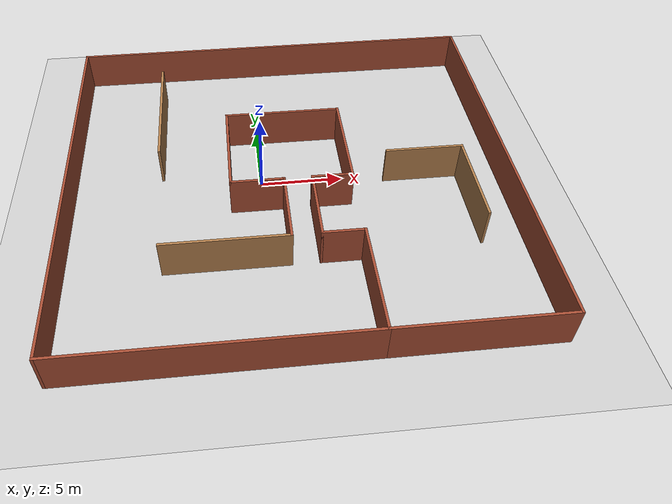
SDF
<sdf version="1.6">
 <world name="default">
  <light name="sun" type="directional">
   <pose>0 0 10 0 -0 0</pose>
   <diffuse>0.8 0.8 0.8 1</diffuse>
   <specular>0.2 0.2 0.2 1</specular>
   <attenuation>
    <range>1000</range>
    <constant>0.9</constant>
    <linear>0.01</linear>
    <quadratic>0.001</quadratic>
   </attenuation>
   <direction>-0.5 0.1 -0.9</direction>
  </light>
  <model name="ground_plane">
   <static>1</static>
   <link name="link">
    <collision name="collision">
     <geometry><plane><normal>0 0 1</normal><size>100 100</size></plane></geometry>
     <surface><friction><ode><mu>100</mu><mu2>50</mu2></ode></friction></surface>
    </collision>
    <visual name="visual">
     <cast_shadows>0</cast_shadows>
     <geometry><plane><normal>0 0 1</normal><size>100 100</size></plane></geometry>
     <material>
      <script><uri>file://media/materials/scripts/gazebo.material</uri><name>Gazebo/Grey</name></script>
     </material>
    </visual>
   </link>
  </model>
  <gravity>0 0 -9.8</gravity>
  <magnetic_field>6e-06 2.3e-05 -4.2e-05</magnetic_field>
  <atmosphere type="adiabatic"/>
  <physics name="default_physics" default="0" type="ode">
   <max_step_size>0.001</max_step_size>
   <real_time_factor>1</real_time_factor>
   <real_time_update_rate>1000</real_time_update_rate>
  </physics>
  <scene><ambient>0.4 0.4 0.4 1</ambient><background>0.7 0.7 0.7 1</background><shadows>1</shadows></scene>
  <audio><device>default</device></audio>
  <spherical_coordinates>
   <surface_model>EARTH_WGS84</surface_model>
   <latitude_deg>0</latitude_deg>
   <longitude_deg>0</longitude_deg>
   <elevation>0</elevation>
   <heading_deg>0</heading_deg>
  </spherical_coordinates>
  <plugin name="world_plugin" filename="libworld_plugin.so"/>
  <model name="swarm_building">
   <pose>1.64 -0.715 0 0 -0 0</pose>
   <link name="Wall_11">
    <collision name="Wall_11_Collision">
     <geometry><box><size>3.25 0.15 2.5</size></box></geometry>
     <pose>0 0 1.25 0 -0 0</pose>
    </collision>
    <visual name="Wall_11_Visual">
     <pose>0 0 1.25 0 -0 0</pose>
     <geometry><box><size>3.25 0.15 2.5</size></box></geometry>
     <material>
      <script><uri>file://media/materials/scripts/gazebo.material</uri><name>Gazebo/Bricks</name></script>
      <ambient>1 1 1 1</ambient>
     </material>
     <meta><layer>0</layer></meta>
    </visual>
    <pose>-2 -1.475 0 0 -0 0</pose>
   </link>
   <link name="Wall_13">
    <collision name="Wall_13_Collision">
     <geometry><box><size>4.5 0.15 2.5</size></box></geometry>
     <pose>0 0 1.25 0 -0 0</pose>
    </collision>
    <visual name="Wall_13_Visual">
     <pose>0 0 1.25 0 -0 0</pose>
     <geometry><box><size>4.5 0.15 2.5</size></box></geometry>
     <material>
      <script><uri>file://media/materials/scripts/gazebo.material</uri><name>Gazebo/Bricks</name></script>
      <ambient>1 1 1 1</ambient>
     </material>
     <meta><layer>0</layer></meta>
    </visual>
    <pose>-0.45 -3.65 0 0 -0 -1.5708</pose>
   </link>
   <link name="Wall_14">
    <collision name="Wall_14_Collision">
     <geometry><box><size>7.25 0.15 2.5</size></box></geometry>
     <pose>0 0 1.25 0 -0 0</pose>
    </collision>
    <visual name="Wall_14_Visual">
     <pose>0 0 1.25 0 -0 0</pose>
     <geometry><box><size>7.25 0.15 2.5</size></box></geometry>
     <material>
      <script><uri>file://media/materials/scripts/gazebo.material</uri><name>Gazebo/Wood</name></script>
      <ambient>1 1 1 1</ambient>
     </material>
     <meta><layer>0</layer></meta>
    </visual>
    <pose>-4 -5.825 0 0 -0 3.14159</pose>
   </link>
   <link name="Wall_16">
    <collision name="Wall_16_Collision">
     <geometry><box><size>4.5 0.15 2.5</size></box></geometry>
     <pose>0 0 1.25 0 -0 0</pose>
    </collision>
    <visual name="Wall_16_Visual">
     <pose>0 0 1.25 0 -0 0</pose>
     <geometry><box><size>4.5 0.15 2.5</size></box></geometry>
     <material>
      <script><uri>file://media/materials/scripts/gazebo.material</uri><name>Gazebo/Bricks</name></script>
      <ambient>1 1 1 1</ambient>
     </material>
     <meta><layer>0</layer></meta>
    </visual>
    <pose>1.2 -3.65 0 0 -0 -1.5708</pose>
   </link>
   <link name="Wall_17">
    <collision name="Wall_17_Collision">
     <geometry><box><size>2.5 0.15 2.5</size></box></geometry>
     <pose>0 0 1.25 0 -0 0</pose>
    </collision>
    <visual name="Wall_17_Visual">
     <pose>0 0 1.25 0 -0 0</pose>
     <geometry><box><size>2.5 0.15 2.5</size></box></geometry>
     <material>
      <script><uri>file://media/materials/scripts/gazebo.material</uri><name>Gazebo/Bricks</name></script>
      <ambient>1 1 1 1</ambient>
     </material>
     <meta><layer>0</layer></meta>
    </visual>
    <pose>2.375 -5.825 0 0 -0 0</pose>
   </link>
   <link name="Wall_22">
    <collision name="Wall_22_Collision">
     <geometry><box><size>6.5 0.15 2.5</size></box></geometry>
     <pose>0 0 1.25 0 -0 0</pose>
    </collision>
    <visual name="Wall_22_Visual">
     <pose>0 0 1.25 0 -0 0</pose>
     <geometry><box><size>6.5 0.15 2.5</size></box></geometry>
     <material>
      <script><uri>file://media/materials/scripts/gazebo.material</uri><name>Gazebo/Bricks</name></script>
      <ambient>1 1 1 1</ambient>
     </material>
     <meta><layer>0</layer></meta>
    </visual>
    <pose>3.55 -9 0 0 -0 -1.5708</pose>
   </link>
   <link name="Wall_23">
    <collision name="Wall_23_Collision">
     <geometry><box><size>16.75 0.15 2.5</size></box></geometry>
     <pose>0 0 1.25 0 -0 0</pose>
    </collision>
    <visual name="Wall_23_Visual">
     <pose>0 0 1.25 0 -0 0</pose>
     <geometry><box><size>16.75 0.15 2.5</size></box></geometry>
     <material>
      <script><uri>file://media/materials/scripts/gazebo.material</uri><name>Gazebo/Bricks</name></script>
      <ambient>1 1 1 1</ambient>
     </material>
     <meta><layer>0</layer></meta>
    </visual>
    <pose>-4.75 -12.175 0 0 -0 3.14159</pose>
   </link>
   <link name="Wall_24">
    <collision name="Wall_24_Collision">
     <geometry><box><size>24.5 0.15 2.5</size></box></geometry>
     <pose>0 0 1.25 0 -0 0</pose>
    </collision>
    <visual name="Wall_24_Visual">
     <pose>0 0 1.25 0 -0 0</pose>
     <geometry><box><size>24.5 0.15 2.5</size></box></geometry>
     <material>
      <script><uri>file://media/materials/scripts/gazebo.material</uri><name>Gazebo/Bricks</name></script>
      <ambient>1 1 1 1</ambient>
     </material>
     <meta><layer>0</layer></meta>
    </visual>
    <pose>-13.05 0 0 0 -0 1.5708</pose>
   </link>
   <link name="Wall_25">
    <collision name="Wall_25_Collision">
     <geometry><box><size>26.25 0.15 2.5</size></box></geometry>
     <pose>0 0 1.25 0 -0 0</pose>
    </collision>
    <visual name="Wall_25_Visual">
     <pose>0 0 1.25 0 -0 0</pose>
     <geometry><box><size>26.25 0.15 2.5</size></box></geometry>
     <material>
      <script><uri>file://media/materials/scripts/gazebo.material</uri><name>Gazebo/Bricks</name></script>
      <ambient>1 1 1 1</ambient>
     </material>
     <meta><layer>0</layer></meta>
    </visual>
    <pose>0 12.175 0 0 -0 0</pose>
   </link>
   <link name="Wall_26">
    <collision name="Wall_26_Collision">
     <geometry><box><size>24.5 0.15 2.5</size></box></geometry>
     <pose>0 0 1.25 0 -0 0</pose>
    </collision>
    <visual name="Wall_26_Visual">
     <pose>0 0 1.25 0 -0 0</pose>
     <geometry><box><size>24.5 0.15 2.5</size></box></geometry>
     <material>
      <script><uri>file://media/materials/scripts/gazebo.material</uri><name>Gazebo/Bricks</name></script>
      <ambient>1 1 1 1</ambient>
     </material>
     <meta><layer>0</layer></meta>
    </visual>
    <pose>13.05 0 0 0 -0 -1.5708</pose>
   </link>
   <link name="Wall_27">
    <collision name="Wall_27_Collision">
     <geometry><box><size>9.65 0.15 2.5</size></box></geometry>
     <pose>0 0 1.25 0 -0 0</pose>
    </collision>
    <visual name="Wall_27_Visual">
     <pose>0 0 1.25 0 -0 0</pose>
     <geometry><box><size>9.65 0.15 2.5</size></box></geometry>
     <material>
      <script><uri>file://media/materials/scripts/gazebo.material</uri><name>Gazebo/Bricks</name></script>
      <ambient>1 1 1 1</ambient>
     </material>
     <meta><layer>0</layer></meta>
    </visual>
    <pose>8.3 -12.175 0 0 -0 3.14159</pose>
   </link>
   <link name="Wall_29">
    <collision name="Wall_29_Collision">
     <geometry><box><size>8.25 0.15 2.5</size></box></geometry>
     <pose>0 0 1.25 0 -0 0</pose>
    </collision>
    <visual name="Wall_29_Visual">
     <pose>0 0 1.25 0 -0 0</pose>
     <geometry><box><size>8.25 0.15 2.5</size></box></geometry>
     <material>
      <script><uri>file://media/materials/scripts/gazebo.material</uri><name>Gazebo/Wood</name></script>
      <ambient>1 1 1 1</ambient>
     </material>
     <meta><layer>0</layer></meta>
    </visual>
    <pose>-7.72346 5.71221 0 0 -0 -1.5708</pose>
   </link>
   <link name="Wall_31">
    <collision name="Wall_31_Collision">
     <geometry><box><size>4.75 0.15 2.5</size></box></geometry>
     <pose>0 0 1.25 0 -0 0</pose>
    </collision>
    <visual name="Wall_31_Visual">
     <pose>0 0 1.25 0 -0 0</pose>
     <geometry><box><size>4.75 0.15 2.5</size></box></geometry>
     <material>
      <script><uri>file://media/materials/scripts/gazebo.material</uri><name>Gazebo/Wood</name></script>
      <ambient>1 1 1 1</ambient>
     </material>
     <meta><layer>0</layer></meta>
    </visual>
    <pose>8.2468 0.323217 0 0 -0 0</pose>
   </link>
   <link name="Wall_32">
    <collision name="Wall_32_Collision">
     <geometry><box><size>5.75 0.15 2.5</size></box></geometry>
     <pose>0 0 1.25 0 -0 0</pose>
    </collision>
    <visual name="Wall_32_Visual">
     <pose>0 0 1.25 0 -0 0</pose>
     <geometry><box><size>5.75 0.15 2.5</size></box></geometry>
     <material>
      <script><uri>file://media/materials/scripts/gazebo.material</uri><name>Gazebo/Wood</name></script>
      <ambient>1 1 1 1</ambient>
     </material>
     <meta><layer>0</layer></meta>
    </visual>
    <pose>10.5468 -2.47678 0 0 -0 -1.5708</pose>
   </link>
   <link name="Wall_4">
    <collision name="Wall_4_Collision">
     <geometry><box><size>6.25 0.15 2.5</size></box></geometry>
     <pose>0 0 1.25 0 -0 0</pose>
    </collision>
    <visual name="Wall_4_Visual">
     <pose>0 0 1.25 0 -0 0</pose>
     <geometry><box><size>6.25 0.15 2.5</size></box></geometry>
     <material>
      <script><uri>file://media/materials/scripts/gazebo.material</uri><name>Gazebo/Bricks</name></script>
      <ambient>1 1 1 1</ambient>
     </material>
     <meta><layer>0</layer></meta>
    </visual>
    <pose>-3.55 1.575 0 0 -0 1.5708</pose>
   </link>
   <link name="Wall_5">
    <collision name="Wall_5_Collision">
     <geometry><box><size>7.25 0.15 2.5</size></box></geometry>
     <pose>0 0 1.25 0 -0 0</pose>
    </collision>
    <visual name="Wall_5_Visual">
     <pose>0 0 1.25 0 -0 0</pose>
     <geometry><box><size>7.25 0.15 2.5</size></box></geometry>
     <material>
      <script><uri>file://media/materials/scripts/gazebo.material</uri><name>Gazebo/Bricks</name></script>
      <ambient>1 1 1 1</ambient>
     </material>
     <meta><layer>0</layer></meta>
    </visual>
    <pose>0 4.625 0 0 -0 0</pose>
   </link>
   <link name="Wall_8">
    <collision name="Wall_8_Collision">
     <geometry><box><size>6.25 0.15 2.5</size></box></geometry>
     <pose>0 0 1.25 0 -0 0</pose>
    </collision>
    <visual name="Wall_8_Visual">
     <pose>0 0 1.25 0 -0 0</pose>
     <geometry><box><size>6.25 0.15 2.5</size></box></geometry>
     <material>
      <script><uri>file://media/materials/scripts/gazebo.material</uri><name>Gazebo/Bricks</name></script>
      <ambient>1 1 1 1</ambient>
     </material>
     <meta><layer>0</layer></meta>
    </visual>
    <pose>3.55 1.575 0 0 -0 -1.5708</pose>
   </link>
   <link name="Wall_9">
    <collision name="Wall_9_Collision">
     <geometry><box><size>2.5 0.15 2.5</size></box></geometry>
     <pose>0 0 1.25 0 -0 0</pose>
    </collision>
    <visual name="Wall_9_Visual">
     <pose>0 0 1.25 0 -0 0</pose>
     <geometry><box><size>2.5 0.15 2.5</size></box></geometry>
     <material>
      <script><uri>file://media/materials/scripts/gazebo.material</uri><name>Gazebo/Bricks</name></script>
      <ambient>1 1 1 1</ambient>
     </material>
     <meta><layer>0</layer></meta>
    </visual>
    <pose>2.375 -1.475 0 0 -0 3.14159</pose>
   </link>
   <static>1</static>
  </model>
 </world>
</sdf>
